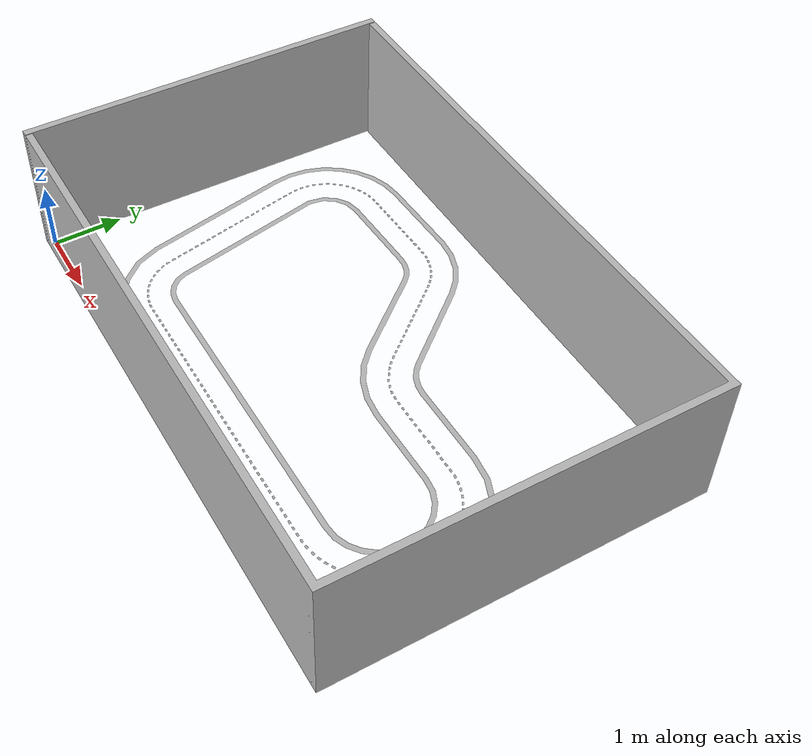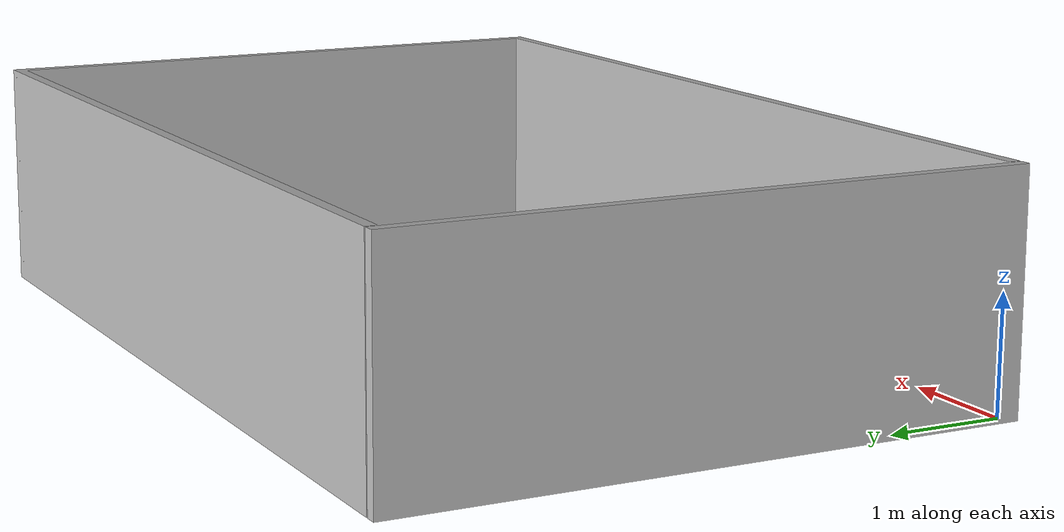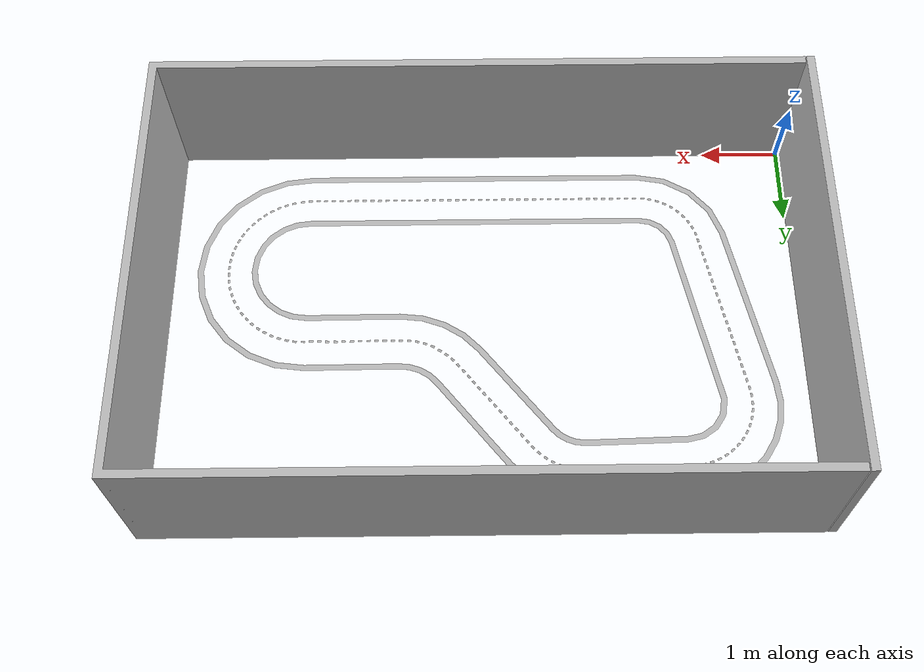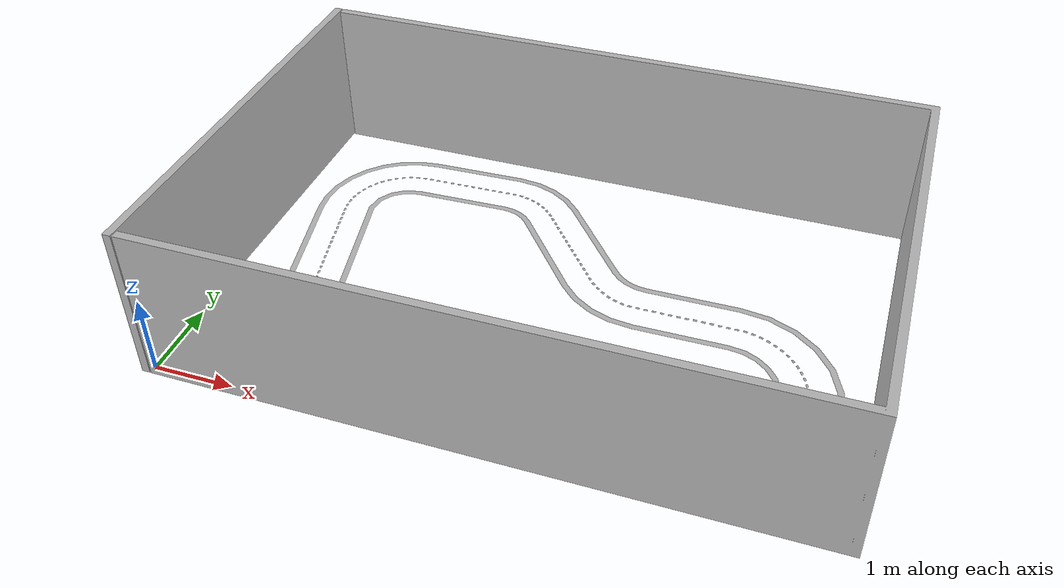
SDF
<?xml version='1.0'?>
<sdf version='1.4'>
  <model name="linesWalls">
    <link name="outerLinesLink">
      <visual name="visual">
        <pose>0 0 0.002 0 0 0</pose>
        <geometry>
          <mesh>
            <uri>model://meshes/reinvent/outerLines.dae</uri>
          </mesh>
        </geometry>
      </visual>
    </link>
    <link name="innerLinesLink">
      <visual name="visual">
        <pose>0 0 0.002 0 0 0</pose>
        <geometry>
          <mesh>
            <uri>model://meshes/reinvent/inner_lines.dae</uri>
          </mesh>
        </geometry>
      </visual>
    </link>
    <link name="wallsLink">
      <collision name="collision">
        <pose>0 0 0 0 0 0</pose>
        <geometry>
          <mesh>
            <uri>model://meshes/reinvent/walls.dae</uri>
          </mesh>
        </geometry>
      </collision>
      <visual name="visual">
        <pose>0 0 0 0 0 0</pose>
        <geometry>
          <mesh>
            <uri>model://meshes/reinvent/walls.dae</uri>
          </mesh>
        </geometry>
      </visual>
    </link>
    <static>1</static>
  </model>
</sdf>
